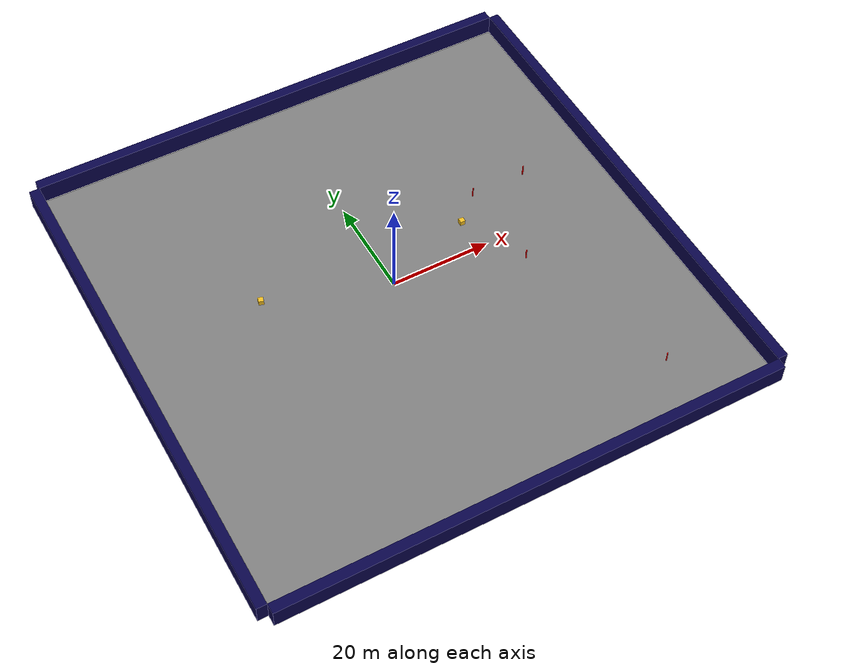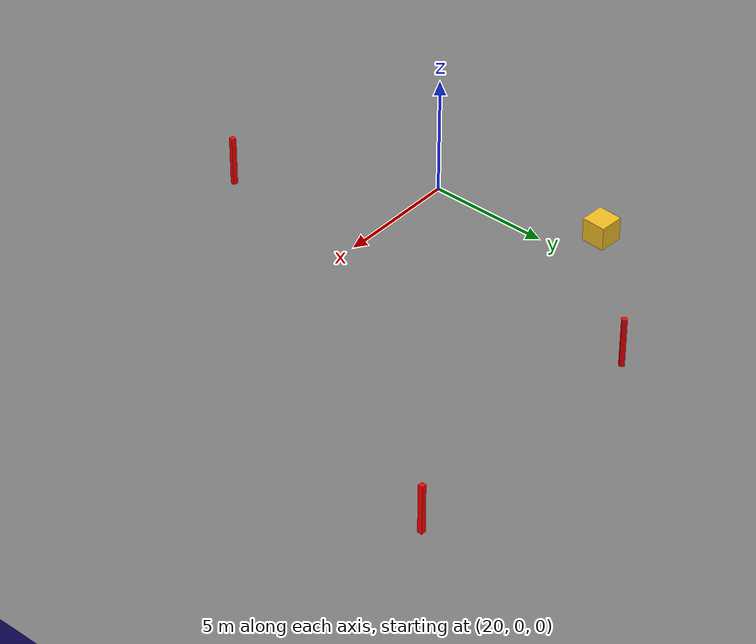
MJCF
<mujoco model="unnamed_model">
  <default>
    <default class="/" />
    <default class="border/" />
    <default class="border_1/" />
    <default class="border_2/" />
    <default class="border_3/" />
    <default class="placeholder/" />
    <default class="agent/" />
    <default class="tree0/" />
    <default class="tree1/" />
    <default class="tree2/" />
    <default class="tree3/" />
  </default>
  <worldbody>
    <body name="border/">
      <body name="border/border" pos="0 51 2">
        <geom name="border/border_geom" class="border/" type="box" size="50 1 2" rgba="0.035000000000000003 0.016 0.28999999999999998 1" />
      </body>
    </body>
    <body name="border_1/">
      <body name="border_1/border" pos="0 -51 2">
        <geom name="border_1/border_geom" class="border_1/" type="box" size="50 1 2" rgba="0.035000000000000003 0.016 0.28999999999999998 1" />
      </body>
    </body>
    <body name="border_2/">
      <body name="border_2/border" pos="51 0 2">
        <geom name="border_2/border_geom" class="border_2/" type="box" size="1 50 2" rgba="0.035000000000000003 0.016 0.28999999999999998 1" />
      </body>
    </body>
    <body name="border_3/">
      <body name="border_3/border" pos="-51 0 2">
        <geom name="border_3/border_geom" class="border_3/" type="box" size="1 50 2" rgba="0.035000000000000003 0.016 0.28999999999999998 1" />
      </body>
    </body>
    <body euler="0 0 -13.659446223152855" name="placeholder/">
      <joint name="placeholder/boxagent_freeJoint/" class="/" type="free" />
      <body name="placeholder/placeholder" pos="-25 0 3" euler="0 0 0">
        <geom name="placeholder/boxagent_geom" class="placeholder/" type="box" size="0.5 0.5 0.5" rgba="0.94899999999999995 0.74509999999999998 0.1333 1" euler="0 0 0" />
      </body>
    </body>
    <body euler="0 0 177.02326738366946" name="agent/">
      <joint name="agent/boxagent_freeJoint/" class="/" type="free" />
      <body name="agent/agent" pos="-18.072950000000002 -7.6865999999999985 0.5" euler="0 0 0">
        <geom name="agent/boxagent_geom" class="agent/" type="box" size="0.5 0.5 0.5" rgba="0.94899999999999995 0.74509999999999998 0.1333 1" euler="0 0 0" />
      </body>
    </body>
    <body name="tree0/">
      <body name="tree0/tree0" pos="34.546900000000001 -38.632399999999997 0.10000000000000001" euler="0 0 -133.49335267157286">
        <geom name="tree0/tree_geom" class="tree0/" type="box" size="0.10000000000000001 0.10000000000000001 2" rgba="1 0 0 1" />
      </body>
    </body>
    <body name="tree1/">
      <body name="tree1/tree1" pos="23.869150000000001 11.845500000000001 0.10000000000000001" euler="0 0 -135.90383327274921">
        <geom name="tree1/tree_geom" class="tree1/" type="box" size="0.10000000000000001 0.10000000000000001 2" rgba="1 0 0 1" />
      </body>
    </body>
    <body name="tree2/">
      <body name="tree2/tree2" pos="24.881150000000002 -6.2948999999999984 0.10000000000000001" euler="0 0 -108.45620906544093">
        <geom name="tree2/tree_geom" class="tree2/" type="box" size="0.10000000000000001 0.10000000000000001 2" rgba="1 0 0 1" />
      </body>
    </body>
    <body name="tree3/">
      <body name="tree3/tree3" pos="35.276150000000001 12.076999999999998 0.10000000000000001" euler="0 0 89.64764725508536">
        <geom name="tree3/tree_geom" class="tree3/" type="box" size="0.10000000000000001 0.10000000000000001 2" rgba="1 0 0 1" />
      </body>
    </body>
    <geom name="base_plane" class="/" type="plane" size="50 50 0.10000000000000001" />
  </worldbody>
</mujoco>
